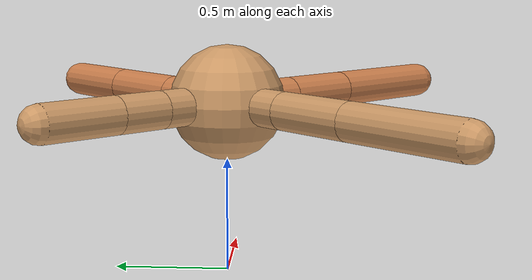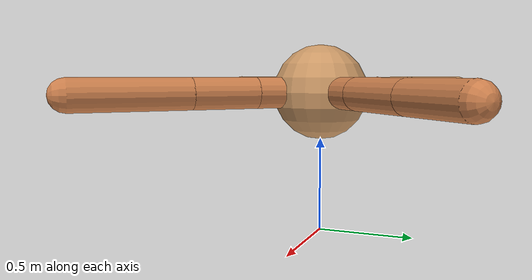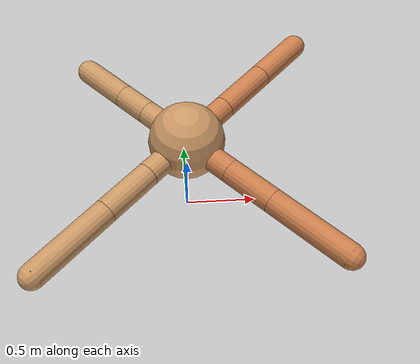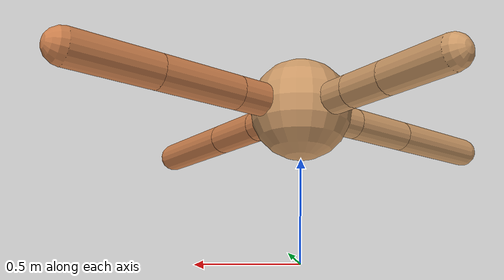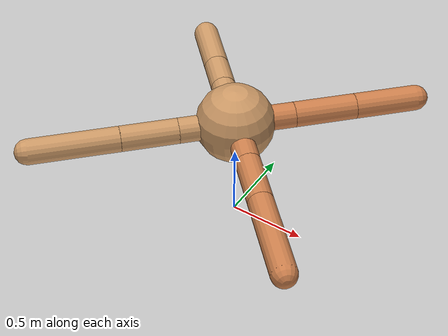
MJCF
<mujoco model="ant">
  <compiler angle="degree" coordinate="local" inertiafromgeom="true" />
  <option integrator="RK4" timestep="0.01" />
  <custom>
    <numeric data="0.0 0.0 0.55 1.0 0.0 0.0 0.0 0.0 1.0 0.0 -1.0 0.0 -1.0 0.0 1.0" name="init_qpos" />
  </custom>
  <default>
    <joint armature="1" damping="1" limited="true" />
    <geom conaffinity="0" condim="3" density="5.0" friction="1.5 0.1 0.1" margin="0.01" rgba="0.8 0.6 0.4 1" />
  </default>
  <worldbody>
    <body name="torso" pos="0 0 0.75">
      <geom name="torso_geom" pos="0 0 0" size="0.25" type="sphere" />

      <body name="front_left_leg" pos="0 0 0">
        <geom fromto="0.0 0.0 0.0 0.26616250791612095 0.26616250791612095 0.0" name="aux_1_geom" size="0.08" type="capsule" rgba=".8 .5 .3 1" />
        <body name="aux_1" pos="0.26616250791612095 0.26616250791612095 0.0">
          <joint axis="0 0 1" name="hip_1" pos="0.0 0.0 0.0" range="-40 40" type="hinge" />
          <geom fromto="0.0 0.0 0.0 0.2779688131036393 0.2779688131036393 0.0" name="left_leg_geom" size="0.08" type="capsule" rgba=".8 .5 .3 1" />
          <body pos="0.2779688131036393 0.2779688131036393 0.0" name="front_left_foot">
            <joint axis="-1 1 0" name="ankle_1" pos="0.0 0.0 0.0" range="30 100" type="hinge" />
            <geom fromto="0.0 0.0 0.0 0.28164194899983247 0.28164194899983247 0.0" name="left_ankle_geom" size="0.08" type="capsule" rgba=".8 .5 .3 1" />
          </body>
        </body>
      </body>
      <body name="front_right_leg" pos="0 0 0">
        <geom fromto="0.0 0.0 0.0 -0.250495034279172 0.250495034279172 0.0" name="aux_2_geom" size="0.08" type="capsule" />
        <body name="aux_2" pos="-0.250495034279172 0.250495034279172 0.0">
          <joint axis="0 0 1" name="hip_2" pos="0.0 0.0 0.0" range="-40 40" type="hinge" />
          <geom fromto="0.0 0.0 0.0 -0.15468388809322642 0.15468388809322642 0.0" name="right_leg_geom" size="0.08" type="capsule" />
          <body pos="-0.15468388809322642 0.15468388809322642 0.0" name="front_right_foot">
            <joint axis="1 1 0" name="ankle_2" pos="0.0 0.0 0.0" range="-100 -30" type="hinge" />
            <geom fromto="0.0 0.0 0.0 -0.24732681070243756 0.24732681070243756 0.0" name="right_ankle_geom" size="0.08" type="capsule" />
          </body>
        </body>
      </body>
      <body name="left_back_leg" pos="0 0 0">
        <geom fromto="0.0 0.0 0.0 -0.25338972496100526 -0.25338972496100526 0.0" name="aux_3_geom" size="0.08" type="capsule" />
        <body name="aux_3" pos="-0.25338972496100526 -0.25338972496100526 0.0">
          <joint axis="0 0 1" name="hip_3" pos="0.0 0.0 0.0" range="-40 40" type="hinge" />
          <geom fromto="0.0 0.0 0.0 -0.2551383311327467 -0.2551383311327467 0.0" name="back_leg_geom" size="0.08" type="capsule" />
          <body pos="-0.2551383311327467 -0.2551383311327467 0.0" name="left_back_foot">
            <joint axis="-1 1 0" name="ankle_3" pos="0.0 0.0 0.0" range="-100 -30" type="hinge" />
            <geom fromto="0.0 0.0 0.0 -0.4002762421862805 -0.4002762421862805 0.0" name="third_ankle_geom" size="0.08" type="capsule" />
          </body>
        </body>
      </body>
      <body name="right_back_leg" pos="0 0 0">
        <geom fromto="0.0 0.0 0.0 0.25888216278865034 -0.25888216278865034 0.0" name="aux_4_geom" size="0.08" type="capsule" rgba=".8 .5 .3 1" />
        <body name="aux_4" pos="0.25888216278865034 -0.25888216278865034 0.0">
          <joint axis="0 0 1" name="hip_4" pos="0.0 0.0 0.0" range="-40 40" type="hinge" />
          <geom fromto="0.0 0.0 0.0 0.2334441581428302 -0.2334441581428302 0.0" name="rightback_leg_geom" size="0.08" type="capsule" rgba=".8 .5 .3 1" />
          <body pos="0.2334441581428302 -0.2334441581428302 0.0" name="right_back_foot">
            <joint axis="1 1 0" name="ankle_4" pos="0.0 0.0 0.0" range="30 100" type="hinge" />
            <geom fromto="0.0 0.0 0.0 0.39784870552801826 -0.39784870552801826 0.0" name="fourth_ankle_geom" size="0.08" type="capsule" rgba=".8 .5 .3 1" />
          </body>
        </body>
      </body>
    </body>
  </worldbody>
  <actuator>
    <motor ctrllimited="true" ctrlrange="-1.0 1.0" joint="hip_4" gear="150" />
    <motor ctrllimited="true" ctrlrange="-1.0 1.0" joint="ankle_4" gear="150" />
    <motor ctrllimited="true" ctrlrange="-1.0 1.0" joint="hip_1" gear="150" />
    <motor ctrllimited="true" ctrlrange="-1.0 1.0" joint="ankle_1" gear="150" />
    <motor ctrllimited="true" ctrlrange="-1.0 1.0" joint="hip_2" gear="150" />
    <motor ctrllimited="true" ctrlrange="-1.0 1.0" joint="ankle_2" gear="150" />
    <motor ctrllimited="true" ctrlrange="-1.0 1.0" joint="hip_3" gear="150" />
    <motor ctrllimited="true" ctrlrange="-1.0 1.0" joint="ankle_3" gear="150" />
  </actuator>
</mujoco>
